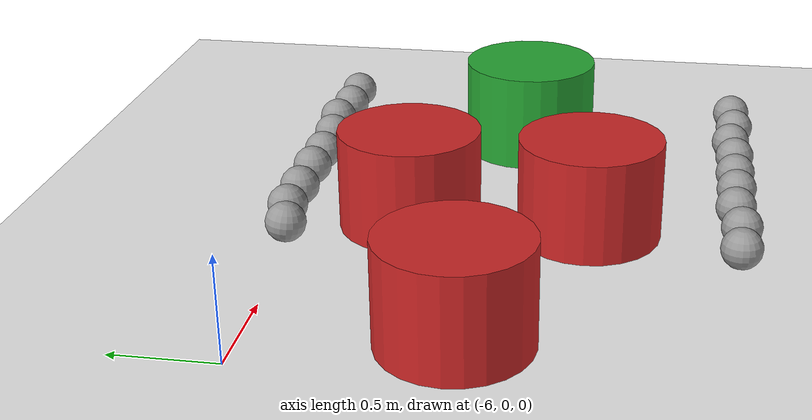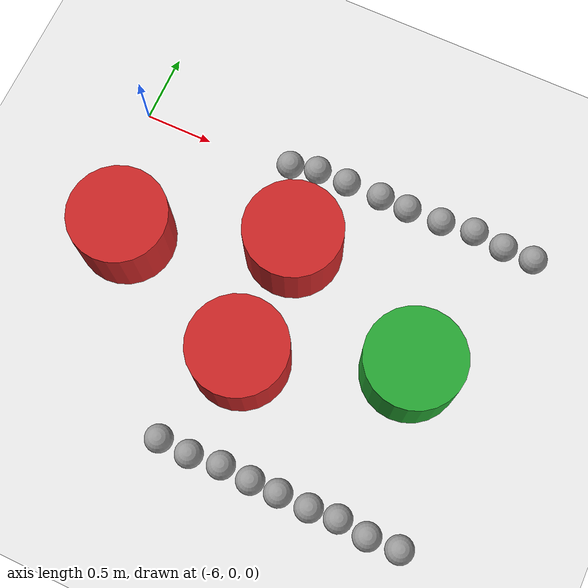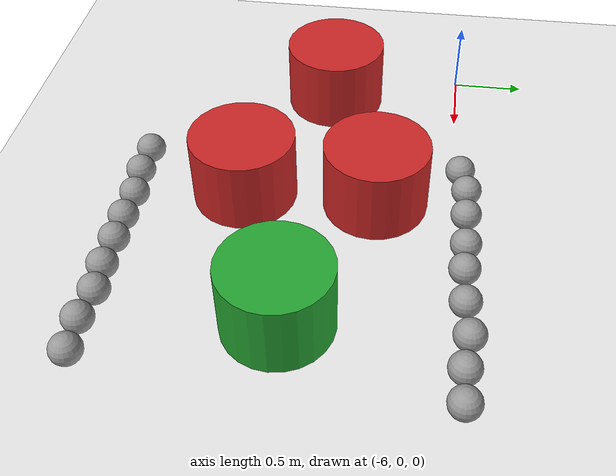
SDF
<sdf version="1.7">
 <world name="default">
  <model name="ground_plane">
   <static>1</static>
   <link name="link">
    <collision name="collision">
     <geometry><plane><normal>0 0 1</normal><size>100 100</size></plane></geometry>
     <surface>
      <contact><collide_bitmask>65535</collide_bitmask></contact>
      <friction><ode><mu>100</mu><mu2>50</mu2></ode></friction>
     </surface>
    </collision>
    <visual name="visual">
     <cast_shadows>0</cast_shadows>
     <geometry><plane><normal>0 0 1</normal><size>100 100</size></plane></geometry>
     <material>
      <script><uri>file://media/materials/scripts/gazebo.material</uri><name>Gazebo/White</name></script>
     </material>
    </visual>
   </link>
  </model>
  <model name="model8.1_0">
   <link name="link_1">
    <inertial>
     <mass>1</mass>
     <inertia><ixx>0.145833</ixx><ixy>0</ixy><ixz>0</ixz><iyy>0.145833</iyy><iyz>0</iyz><izz>0.125</izz></inertia>
    </inertial>
    <visual name="visual">
     <geometry><cylinder><radius>0.35</radius><length>0.5</length></cylinder></geometry>
     <material>
      <lighting>1</lighting>
      <script><uri>file://media/materials/scripts/gazebo.material</uri><name>Gazebo/Green</name></script>
      <shader type="pixel"><normal_map>__default__</normal_map></shader>
      <ambient>0.3 0.3 0.3 1</ambient>
      <diffuse>0.7 0.7 0.7 1</diffuse>
      <specular>0.01 0.01 0.01 1</specular>
      <emissive>0 0 0 1</emissive>
     </material>
    </visual>
    <collision name="collision">
     <geometry><cylinder><radius>0.35</radius><length>0.5</length></cylinder></geometry>
     <surface>
      <friction>
       <ode><mu>1</mu><mu2>1</mu2><fdir1>0 0 0</fdir1><slip1>0</slip1><slip2>0</slip2></ode>
       <torsional>
        <coefficient>1</coefficient>
        <patch_radius>0</patch_radius>
        <surface_radius>0</surface_radius>
        <use_patch_radius>1</use_patch_radius>
        <ode><slip>0</slip></ode>
       </torsional>
      </friction>
      <bounce><restitution_coefficient>0</restitution_coefficient><threshold>1e+06</threshold></bounce>
      <contact>
       <collide_without_contact>0</collide_without_contact>
       <collide_without_contact_bitmask>1</collide_without_contact_bitmask>
       <collide_bitmask>1</collide_bitmask>
       <ode>
        <soft_cfm>0</soft_cfm>
        <soft_erp>0.2</soft_erp>
        <kp>1e+13</kp>
        <kd>1</kd>
        <max_vel>0.01</max_vel>
        <min_depth>0</min_depth>
       </ode>
       <bullet>
        <split_impulse>1</split_impulse>
        <split_impulse_penetration_threshold>-0.01</split_impulse_penetration_threshold>
        <soft_cfm>0</soft_cfm>
        <soft_erp>0.2</soft_erp>
        <kp>1e+13</kp>
        <kd>1</kd>
       </bullet>
      </contact>
     </surface>
    </collision>
   </link>
   <static>0</static>
   <pose>-3.48428 -0.984785 0.249997 -5e-06 5e-06 8.1e-05</pose>
  </model>
  <model name="model8.1_1">
   <link name="link_1">
    <inertial>
     <mass>1</mass>
     <inertia><ixx>0.145833</ixx><ixy>0</ixy><ixz>0</ixz><iyy>0.145833</iyy><iyz>0</iyz><izz>0.125</izz></inertia>
    </inertial>
    <visual name="visual">
     <geometry><cylinder><radius>0.35</radius><length>0.5</length></cylinder></geometry>
     <material>
      <lighting>1</lighting>
      <script><uri>file://media/materials/scripts/gazebo.material</uri><name>Gazebo/Red</name></script>
      <shader type="pixel"><normal_map>__default__</normal_map></shader>
      <ambient>0.3 0.3 0.3 1</ambient>
      <diffuse>0.7 0.7 0.7 1</diffuse>
      <specular>0.01 0.01 0.01 1</specular>
      <emissive>0 0 0 1</emissive>
     </material>
    </visual>
    <collision name="collision">
     <geometry><cylinder><radius>0.35</radius><length>0.5</length></cylinder></geometry>
     <surface>
      <friction>
       <ode><mu>1</mu><mu2>1</mu2><fdir1>0 0 0</fdir1><slip1>0</slip1><slip2>0</slip2></ode>
       <torsional>
        <coefficient>1</coefficient>
        <patch_radius>0</patch_radius>
        <surface_radius>0</surface_radius>
        <use_patch_radius>1</use_patch_radius>
        <ode><slip>0</slip></ode>
       </torsional>
      </friction>
      <bounce><restitution_coefficient>0</restitution_coefficient><threshold>1e+06</threshold></bounce>
      <contact>
       <collide_without_contact>0</collide_without_contact>
       <collide_without_contact_bitmask>1</collide_without_contact_bitmask>
       <collide_bitmask>1</collide_bitmask>
       <ode>
        <soft_cfm>0</soft_cfm>
        <soft_erp>0.2</soft_erp>
        <kp>1e+13</kp>
        <kd>1</kd>
        <max_vel>0.01</max_vel>
        <min_depth>0</min_depth>
       </ode>
       <bullet>
        <split_impulse>1</split_impulse>
        <split_impulse_penetration_threshold>-0.01</split_impulse_penetration_threshold>
        <soft_cfm>0</soft_cfm>
        <soft_erp>0.2</soft_erp>
        <kp>1e+13</kp>
        <kd>1</kd>
       </bullet>
      </contact>
     </surface>
    </collision>
   </link>
   <static>0</static>
   <pose>-5.69949 -0.911997 0.249993 -5e-06 -5e-06 0</pose>
  </model>
  <model name="model8.2_0">
   <link name="link_1">
    <inertial>
     <mass>1</mass>
     <inertia><ixx>0.145833</ixx><ixy>0</ixy><ixz>0</ixz><iyy>0.145833</iyy><iyz>0</iyz><izz>0.125</izz></inertia>
    </inertial>
    <visual name="visual">
     <geometry><cylinder><radius>0.35</radius><length>0.5</length></cylinder></geometry>
     <material>
      <lighting>1</lighting>
      <script><uri>file://media/materials/scripts/gazebo.material</uri><name>Gazebo/Red</name></script>
      <shader type="pixel"><normal_map>__default__</normal_map></shader>
      <ambient>0 1 0 1</ambient>
      <diffuse>0.7 0.7 0.7 1</diffuse>
      <specular>0.01 0.01 0.01 1</specular>
      <emissive>0 0 0 1</emissive>
     </material>
    </visual>
    <collision name="collision">
     <geometry><cylinder><radius>0.35</radius><length>0.5</length></cylinder></geometry>
     <surface>
      <friction>
       <ode><mu>1</mu><mu2>1</mu2><fdir1>0 0 0</fdir1><slip1>0</slip1><slip2>0</slip2></ode>
       <torsional>
        <coefficient>1</coefficient>
        <patch_radius>0</patch_radius>
        <surface_radius>0</surface_radius>
        <use_patch_radius>1</use_patch_radius>
        <ode><slip>0</slip></ode>
       </torsional>
      </friction>
      <bounce><restitution_coefficient>0</restitution_coefficient><threshold>1e+06</threshold></bounce>
      <contact>
       <collide_without_contact>0</collide_without_contact>
       <collide_without_contact_bitmask>1</collide_without_contact_bitmask>
       <collide_bitmask>1</collide_bitmask>
       <ode>
        <soft_cfm>0</soft_cfm>
        <soft_erp>0.2</soft_erp>
        <kp>1e+13</kp>
        <kd>1</kd>
        <max_vel>0.01</max_vel>
        <min_depth>0</min_depth>
       </ode>
       <bullet>
        <split_impulse>1</split_impulse>
        <split_impulse_penetration_threshold>-0.01</split_impulse_penetration_threshold>
        <soft_cfm>0</soft_cfm>
        <soft_erp>0.2</soft_erp>
        <kp>1e+13</kp>
        <kd>1</kd>
       </bullet>
      </contact>
     </surface>
    </collision>
   </link>
   <static>0</static>
   <pose>-4.57136 -1.39215 0.249993 -5e-06 -5e-06 0</pose>
  </model>
  <model name="model8.2_1">
   <link name="link_1">
    <inertial>
     <mass>1</mass>
     <inertia><ixx>0.145833</ixx><ixy>0</ixy><ixz>0</ixz><iyy>0.145833</iyy><iyz>0</iyz><izz>0.125</izz></inertia>
    </inertial>
    <visual name="visual">
     <geometry><cylinder><radius>0.35</radius><length>0.5</length></cylinder></geometry>
     <material>
      <lighting>1</lighting>
      <script><uri>file://media/materials/scripts/gazebo.material</uri><name>Gazebo/Red</name></script>
      <shader type="pixel"><normal_map>__default__</normal_map></shader>
      <ambient>0 1 0 1</ambient>
      <diffuse>0.7 0.7 0.7 1</diffuse>
      <specular>0.01 0.01 0.01 1</specular>
      <emissive>0 0 0 1</emissive>
     </material>
    </visual>
    <collision name="collision">
     <geometry><cylinder><radius>0.35</radius><length>0.5</length></cylinder></geometry>
     <surface>
      <friction>
       <ode><mu>1</mu><mu2>1</mu2><fdir1>0 0 0</fdir1><slip1>0</slip1><slip2>0</slip2></ode>
       <torsional>
        <coefficient>1</coefficient>
        <patch_radius>0</patch_radius>
        <surface_radius>0</surface_radius>
        <use_patch_radius>1</use_patch_radius>
        <ode><slip>0</slip></ode>
       </torsional>
      </friction>
      <bounce><restitution_coefficient>0</restitution_coefficient><threshold>1e+06</threshold></bounce>
      <contact>
       <collide_without_contact>0</collide_without_contact>
       <collide_without_contact_bitmask>1</collide_without_contact_bitmask>
       <collide_bitmask>1</collide_bitmask>
       <ode>
        <soft_cfm>0</soft_cfm>
        <soft_erp>0.2</soft_erp>
        <kp>1e+13</kp>
        <kd>1</kd>
        <max_vel>0.01</max_vel>
        <min_depth>0</min_depth>
       </ode>
       <bullet>
        <split_impulse>1</split_impulse>
        <split_impulse_penetration_threshold>-0.01</split_impulse_penetration_threshold>
        <soft_cfm>0</soft_cfm>
        <soft_erp>0.2</soft_erp>
        <kp>1e+13</kp>
        <kd>1</kd>
       </bullet>
      </contact>
     </surface>
    </collision>
   </link>
   <static>0</static>
   <pose>-4.57857 -0.510922 0.249991 0 -0 0</pose>
  </model>
  <model name="sphere_24">
   <link name="link_0">
    <inertial>
     <mass>1</mass>
     <inertia><ixx>0.1</ixx><ixy>0</ixy><ixz>0</ixz><iyy>0.1</iyy><iyz>0</iyz><izz>0.1</izz></inertia>
    </inertial>
    <visual name="visual">
     <geometry><sphere><radius>0.1</radius></sphere></geometry>
     <material>
      <lighting>1</lighting>
      <script><uri>file://media/materials/scripts/gazebo.material</uri><name>Gazebo/Grey</name></script>
      <shader type="pixel"><normal_map>__default__</normal_map></shader>
      <ambient>0.3 0.3 0.3 1</ambient>
      <diffuse>0.7 0.7 0.7 1</diffuse>
      <specular>0.01 0.01 0.01 1</specular>
      <emissive>0 0 0 1</emissive>
     </material>
    </visual>
    <collision name="collision">
     <geometry><sphere><radius>0.1</radius></sphere></geometry>
     <surface>
      <friction>
       <ode><mu>1</mu><mu2>1</mu2><fdir1>0 0 0</fdir1><slip1>0</slip1><slip2>0</slip2></ode>
       <torsional>
        <coefficient>1</coefficient>
        <patch_radius>0</patch_radius>
        <surface_radius>0</surface_radius>
        <use_patch_radius>1</use_patch_radius>
        <ode><slip>0</slip></ode>
       </torsional>
      </friction>
      <bounce><restitution_coefficient>0</restitution_coefficient><threshold>1e+06</threshold></bounce>
      <contact>
       <collide_without_contact>0</collide_without_contact>
       <collide_without_contact_bitmask>1</collide_without_contact_bitmask>
       <collide_bitmask>1</collide_bitmask>
       <ode>
        <soft_cfm>0</soft_cfm>
        <soft_erp>0.2</soft_erp>
        <kp>1e+13</kp>
        <kd>1</kd>
        <max_vel>0.01</max_vel>
        <min_depth>0</min_depth>
       </ode>
       <bullet>
        <split_impulse>1</split_impulse>
        <split_impulse_penetration_threshold>-0.01</split_impulse_penetration_threshold>
        <soft_cfm>0</soft_cfm>
        <soft_erp>0.2</soft_erp>
        <kp>1e+13</kp>
        <kd>1</kd>
       </bullet>
      </contact>
     </surface>
    </collision>
   </link>
   <static>0</static>
   <pose>-3.08021 -2.11051 0.1 0 -0 0</pose>
  </model>
  <model name="sphere_25">
   <link name="link_0">
    <inertial>
     <mass>1</mass>
     <inertia><ixx>0.1</ixx><ixy>0</ixy><ixz>0</ixz><iyy>0.1</iyy><iyz>0</iyz><izz>0.1</izz></inertia>
    </inertial>
    <visual name="visual">
     <geometry><sphere><radius>0.1</radius></sphere></geometry>
     <material>
      <lighting>1</lighting>
      <script><uri>file://media/materials/scripts/gazebo.material</uri><name>Gazebo/Grey</name></script>
      <shader type="pixel"><normal_map>__default__</normal_map></shader>
      <ambient>0.3 0.3 0.3 1</ambient>
      <diffuse>0.7 0.7 0.7 1</diffuse>
      <specular>0.01 0.01 0.01 1</specular>
      <emissive>0 0 0 1</emissive>
     </material>
    </visual>
    <collision name="collision">
     <geometry><sphere><radius>0.1</radius></sphere></geometry>
     <surface>
      <friction>
       <ode><mu>1</mu><mu2>1</mu2><fdir1>0 0 0</fdir1><slip1>0</slip1><slip2>0</slip2></ode>
       <torsional>
        <coefficient>1</coefficient>
        <patch_radius>0</patch_radius>
        <surface_radius>0</surface_radius>
        <use_patch_radius>1</use_patch_radius>
        <ode><slip>0</slip></ode>
       </torsional>
      </friction>
      <bounce><restitution_coefficient>0</restitution_coefficient><threshold>1e+06</threshold></bounce>
      <contact>
       <collide_without_contact>0</collide_without_contact>
       <collide_without_contact_bitmask>1</collide_without_contact_bitmask>
       <collide_bitmask>1</collide_bitmask>
       <ode>
        <soft_cfm>0</soft_cfm>
        <soft_erp>0.2</soft_erp>
        <kp>1e+13</kp>
        <kd>1</kd>
        <max_vel>0.01</max_vel>
        <min_depth>0</min_depth>
       </ode>
       <bullet>
        <split_impulse>1</split_impulse>
        <split_impulse_penetration_threshold>-0.01</split_impulse_penetration_threshold>
        <soft_cfm>0</soft_cfm>
        <soft_erp>0.2</soft_erp>
        <kp>1e+13</kp>
        <kd>1</kd>
       </bullet>
      </contact>
     </surface>
    </collision>
   </link>
   <static>0</static>
   <pose>-3.30687 -2.12164 0.1 0 -0 0</pose>
  </model>
  <model name="sphere_26">
   <link name="link_0">
    <inertial>
     <mass>1</mass>
     <inertia><ixx>0.1</ixx><ixy>0</ixy><ixz>0</ixz><iyy>0.1</iyy><iyz>0</iyz><izz>0.1</izz></inertia>
    </inertial>
    <visual name="visual">
     <geometry><sphere><radius>0.1</radius></sphere></geometry>
     <material>
      <lighting>1</lighting>
      <script><uri>file://media/materials/scripts/gazebo.material</uri><name>Gazebo/Grey</name></script>
      <shader type="pixel"><normal_map>__default__</normal_map></shader>
      <ambient>0.3 0.3 0.3 1</ambient>
      <diffuse>0.7 0.7 0.7 1</diffuse>
      <specular>0.01 0.01 0.01 1</specular>
      <emissive>0 0 0 1</emissive>
     </material>
    </visual>
    <collision name="collision">
     <geometry><sphere><radius>0.1</radius></sphere></geometry>
     <surface>
      <friction>
       <ode><mu>1</mu><mu2>1</mu2><fdir1>0 0 0</fdir1><slip1>0</slip1><slip2>0</slip2></ode>
       <torsional>
        <coefficient>1</coefficient>
        <patch_radius>0</patch_radius>
        <surface_radius>0</surface_radius>
        <use_patch_radius>1</use_patch_radius>
        <ode><slip>0</slip></ode>
       </torsional>
      </friction>
      <bounce><restitution_coefficient>0</restitution_coefficient><threshold>1e+06</threshold></bounce>
      <contact>
       <collide_without_contact>0</collide_without_contact>
       <collide_without_contact_bitmask>1</collide_without_contact_bitmask>
       <collide_bitmask>1</collide_bitmask>
       <ode>
        <soft_cfm>0</soft_cfm>
        <soft_erp>0.2</soft_erp>
        <kp>1e+13</kp>
        <kd>1</kd>
        <max_vel>0.01</max_vel>
        <min_depth>0</min_depth>
       </ode>
       <bullet>
        <split_impulse>1</split_impulse>
        <split_impulse_penetration_threshold>-0.01</split_impulse_penetration_threshold>
        <soft_cfm>0</soft_cfm>
        <soft_erp>0.2</soft_erp>
        <kp>1e+13</kp>
        <kd>1</kd>
       </bullet>
      </contact>
     </surface>
    </collision>
   </link>
   <static>0</static>
   <pose>-3.52507 -2.09686 0.1 -0.002746 0.025029 -0.000888</pose>
  </model>
  <model name="sphere_27">
   <link name="link_0">
    <inertial>
     <mass>1</mass>
     <inertia><ixx>0.1</ixx><ixy>0</ixy><ixz>0</ixz><iyy>0.1</iyy><iyz>0</iyz><izz>0.1</izz></inertia>
    </inertial>
    <visual name="visual">
     <geometry><sphere><radius>0.1</radius></sphere></geometry>
     <material>
      <lighting>1</lighting>
      <script><uri>file://media/materials/scripts/gazebo.material</uri><name>Gazebo/Grey</name></script>
      <shader type="pixel"><normal_map>__default__</normal_map></shader>
      <ambient>0.3 0.3 0.3 1</ambient>
      <diffuse>0.7 0.7 0.7 1</diffuse>
      <specular>0.01 0.01 0.01 1</specular>
      <emissive>0 0 0 1</emissive>
     </material>
    </visual>
    <collision name="collision">
     <geometry><sphere><radius>0.1</radius></sphere></geometry>
     <surface>
      <friction>
       <ode><mu>1</mu><mu2>1</mu2><fdir1>0 0 0</fdir1><slip1>0</slip1><slip2>0</slip2></ode>
       <torsional>
        <coefficient>1</coefficient>
        <patch_radius>0</patch_radius>
        <surface_radius>0</surface_radius>
        <use_patch_radius>1</use_patch_radius>
        <ode><slip>0</slip></ode>
       </torsional>
      </friction>
      <bounce><restitution_coefficient>0</restitution_coefficient><threshold>1e+06</threshold></bounce>
      <contact>
       <collide_without_contact>0</collide_without_contact>
       <collide_without_contact_bitmask>1</collide_without_contact_bitmask>
       <collide_bitmask>1</collide_bitmask>
       <ode>
        <soft_cfm>0</soft_cfm>
        <soft_erp>0.2</soft_erp>
        <kp>1e+13</kp>
        <kd>1</kd>
        <max_vel>0.01</max_vel>
        <min_depth>0</min_depth>
       </ode>
       <bullet>
        <split_impulse>1</split_impulse>
        <split_impulse_penetration_threshold>-0.01</split_impulse_penetration_threshold>
        <soft_cfm>0</soft_cfm>
        <soft_erp>0.2</soft_erp>
        <kp>1e+13</kp>
        <kd>1</kd>
       </bullet>
      </contact>
     </surface>
    </collision>
   </link>
   <static>0</static>
   <pose>-3.72917 -2.11295 0.1 0.002869 -0.02662 -0.000892</pose>
  </model>
  <model name="sphere_28">
   <link name="link_0">
    <inertial>
     <mass>1</mass>
     <inertia><ixx>0.1</ixx><ixy>0</ixy><ixz>0</ixz><iyy>0.1</iyy><iyz>0</iyz><izz>0.1</izz></inertia>
    </inertial>
    <visual name="visual">
     <geometry><sphere><radius>0.1</radius></sphere></geometry>
     <material>
      <lighting>1</lighting>
      <script><uri>file://media/materials/scripts/gazebo.material</uri><name>Gazebo/Grey</name></script>
      <shader type="pixel"><normal_map>__default__</normal_map></shader>
      <ambient>0.3 0.3 0.3 1</ambient>
      <diffuse>0.7 0.7 0.7 1</diffuse>
      <specular>0.01 0.01 0.01 1</specular>
      <emissive>0 0 0 1</emissive>
     </material>
    </visual>
    <collision name="collision">
     <geometry><sphere><radius>0.1</radius></sphere></geometry>
     <surface>
      <friction>
       <ode><mu>1</mu><mu2>1</mu2><fdir1>0 0 0</fdir1><slip1>0</slip1><slip2>0</slip2></ode>
       <torsional>
        <coefficient>1</coefficient>
        <patch_radius>0</patch_radius>
        <surface_radius>0</surface_radius>
        <use_patch_radius>1</use_patch_radius>
        <ode><slip>0</slip></ode>
       </torsional>
      </friction>
      <bounce><restitution_coefficient>0</restitution_coefficient><threshold>1e+06</threshold></bounce>
      <contact>
       <collide_without_contact>0</collide_without_contact>
       <collide_without_contact_bitmask>1</collide_without_contact_bitmask>
       <collide_bitmask>1</collide_bitmask>
       <ode>
        <soft_cfm>0</soft_cfm>
        <soft_erp>0.2</soft_erp>
        <kp>1e+13</kp>
        <kd>1</kd>
        <max_vel>0.01</max_vel>
        <min_depth>0</min_depth>
       </ode>
       <bullet>
        <split_impulse>1</split_impulse>
        <split_impulse_penetration_threshold>-0.01</split_impulse_penetration_threshold>
        <soft_cfm>0</soft_cfm>
        <soft_erp>0.2</soft_erp>
        <kp>1e+13</kp>
        <kd>1</kd>
       </bullet>
      </contact>
     </surface>
    </collision>
   </link>
   <static>0</static>
   <pose>-3.95319 -2.10993 0.1 0 -0 0</pose>
  </model>
  <model name="sphere_29">
   <link name="link_0">
    <inertial>
     <mass>1</mass>
     <inertia><ixx>0.1</ixx><ixy>0</ixy><ixz>0</ixz><iyy>0.1</iyy><iyz>0</iyz><izz>0.1</izz></inertia>
    </inertial>
    <visual name="visual">
     <geometry><sphere><radius>0.1</radius></sphere></geometry>
     <material>
      <lighting>1</lighting>
      <script><uri>file://media/materials/scripts/gazebo.material</uri><name>Gazebo/Grey</name></script>
      <shader type="pixel"><normal_map>__default__</normal_map></shader>
      <ambient>0.3 0.3 0.3 1</ambient>
      <diffuse>0.7 0.7 0.7 1</diffuse>
      <specular>0.01 0.01 0.01 1</specular>
      <emissive>0 0 0 1</emissive>
     </material>
    </visual>
    <collision name="collision">
     <geometry><sphere><radius>0.1</radius></sphere></geometry>
     <surface>
      <friction>
       <ode><mu>1</mu><mu2>1</mu2><fdir1>0 0 0</fdir1><slip1>0</slip1><slip2>0</slip2></ode>
       <torsional>
        <coefficient>1</coefficient>
        <patch_radius>0</patch_radius>
        <surface_radius>0</surface_radius>
        <use_patch_radius>1</use_patch_radius>
        <ode><slip>0</slip></ode>
       </torsional>
      </friction>
      <bounce><restitution_coefficient>0</restitution_coefficient><threshold>1e+06</threshold></bounce>
      <contact>
       <collide_without_contact>0</collide_without_contact>
       <collide_without_contact_bitmask>1</collide_without_contact_bitmask>
       <collide_bitmask>1</collide_bitmask>
       <ode>
        <soft_cfm>0</soft_cfm>
        <soft_erp>0.2</soft_erp>
        <kp>1e+13</kp>
        <kd>1</kd>
        <max_vel>0.01</max_vel>
        <min_depth>0</min_depth>
       </ode>
       <bullet>
        <split_impulse>1</split_impulse>
        <split_impulse_penetration_threshold>-0.01</split_impulse_penetration_threshold>
        <soft_cfm>0</soft_cfm>
        <soft_erp>0.2</soft_erp>
        <kp>1e+13</kp>
        <kd>1</kd>
       </bullet>
      </contact>
     </surface>
    </collision>
   </link>
   <static>0</static>
   <pose>-4.15674 -2.11162 0.1 0 -0 0</pose>
  </model>
  <model name="sphere_30">
   <link name="link_0">
    <inertial>
     <mass>1</mass>
     <inertia><ixx>0.1</ixx><ixy>0</ixy><ixz>0</ixz><iyy>0.1</iyy><iyz>0</iyz><izz>0.1</izz></inertia>
    </inertial>
    <visual name="visual">
     <geometry><sphere><radius>0.1</radius></sphere></geometry>
     <material>
      <lighting>1</lighting>
      <script><uri>file://media/materials/scripts/gazebo.material</uri><name>Gazebo/Grey</name></script>
      <shader type="pixel"><normal_map>__default__</normal_map></shader>
      <ambient>0.3 0.3 0.3 1</ambient>
      <diffuse>0.7 0.7 0.7 1</diffuse>
      <specular>0.01 0.01 0.01 1</specular>
      <emissive>0 0 0 1</emissive>
     </material>
    </visual>
    <collision name="collision">
     <geometry><sphere><radius>0.1</radius></sphere></geometry>
     <surface>
      <friction>
       <ode><mu>1</mu><mu2>1</mu2><fdir1>0 0 0</fdir1><slip1>0</slip1><slip2>0</slip2></ode>
       <torsional>
        <coefficient>1</coefficient>
        <patch_radius>0</patch_radius>
        <surface_radius>0</surface_radius>
        <use_patch_radius>1</use_patch_radius>
        <ode><slip>0</slip></ode>
       </torsional>
      </friction>
      <bounce><restitution_coefficient>0</restitution_coefficient><threshold>1e+06</threshold></bounce>
      <contact>
       <collide_without_contact>0</collide_without_contact>
       <collide_without_contact_bitmask>1</collide_without_contact_bitmask>
       <collide_bitmask>1</collide_bitmask>
       <ode>
        <soft_cfm>0</soft_cfm>
        <soft_erp>0.2</soft_erp>
        <kp>1e+13</kp>
        <kd>1</kd>
        <max_vel>0.01</max_vel>
        <min_depth>0</min_depth>
       </ode>
       <bullet>
        <split_impulse>1</split_impulse>
        <split_impulse_penetration_threshold>-0.01</split_impulse_penetration_threshold>
        <soft_cfm>0</soft_cfm>
        <soft_erp>0.2</soft_erp>
        <kp>1e+13</kp>
        <kd>1</kd>
       </bullet>
      </contact>
     </surface>
    </collision>
   </link>
   <static>0</static>
   <pose>-4.37641 -2.1025 0.1 0 -0 0</pose>
  </model>
  <model name="sphere_31">
   <link name="link_0">
    <inertial>
     <mass>1</mass>
     <inertia><ixx>0.1</ixx><ixy>0</ixy><ixz>0</ixz><iyy>0.1</iyy><iyz>0</iyz><izz>0.1</izz></inertia>
    </inertial>
    <visual name="visual">
     <geometry><sphere><radius>0.1</radius></sphere></geometry>
     <material>
      <lighting>1</lighting>
      <script><uri>file://media/materials/scripts/gazebo.material</uri><name>Gazebo/Grey</name></script>
      <shader type="pixel"><normal_map>__default__</normal_map></shader>
      <ambient>0.3 0.3 0.3 1</ambient>
      <diffuse>0.7 0.7 0.7 1</diffuse>
      <specular>0.01 0.01 0.01 1</specular>
      <emissive>0 0 0 1</emissive>
     </material>
    </visual>
    <collision name="collision">
     <geometry><sphere><radius>0.1</radius></sphere></geometry>
     <surface>
      <friction>
       <ode><mu>1</mu><mu2>1</mu2><fdir1>0 0 0</fdir1><slip1>0</slip1><slip2>0</slip2></ode>
       <torsional>
        <coefficient>1</coefficient>
        <patch_radius>0</patch_radius>
        <surface_radius>0</surface_radius>
        <use_patch_radius>1</use_patch_radius>
        <ode><slip>0</slip></ode>
       </torsional>
      </friction>
      <bounce><restitution_coefficient>0</restitution_coefficient><threshold>1e+06</threshold></bounce>
      <contact>
       <collide_without_contact>0</collide_without_contact>
       <collide_without_contact_bitmask>1</collide_without_contact_bitmask>
       <collide_bitmask>1</collide_bitmask>
       <ode>
        <soft_cfm>0</soft_cfm>
        <soft_erp>0.2</soft_erp>
        <kp>1e+13</kp>
        <kd>1</kd>
        <max_vel>0.01</max_vel>
        <min_depth>0</min_depth>
       </ode>
       <bullet>
        <split_impulse>1</split_impulse>
        <split_impulse_penetration_threshold>-0.01</split_impulse_penetration_threshold>
        <soft_cfm>0</soft_cfm>
        <soft_erp>0.2</soft_erp>
        <kp>1e+13</kp>
        <kd>1</kd>
       </bullet>
      </contact>
     </surface>
    </collision>
   </link>
   <static>0</static>
   <pose>-4.60455 -2.12423 0.1 0 -0 0</pose>
  </model>
  <model name="sphere_32">
   <link name="link_0">
    <inertial>
     <mass>1</mass>
     <inertia><ixx>0.1</ixx><ixy>0</ixy><ixz>0</ixz><iyy>0.1</iyy><iyz>0</iyz><izz>0.1</izz></inertia>
    </inertial>
    <visual name="visual">
     <geometry><sphere><radius>0.1</radius></sphere></geometry>
     <material>
      <lighting>1</lighting>
      <script><uri>file://media/materials/scripts/gazebo.material</uri><name>Gazebo/Grey</name></script>
      <shader type="pixel"><normal_map>__default__</normal_map></shader>
      <ambient>0.3 0.3 0.3 1</ambient>
      <diffuse>0.7 0.7 0.7 1</diffuse>
      <specular>0.01 0.01 0.01 1</specular>
      <emissive>0 0 0 1</emissive>
     </material>
    </visual>
    <collision name="collision">
     <geometry><sphere><radius>0.1</radius></sphere></geometry>
     <surface>
      <friction>
       <ode><mu>1</mu><mu2>1</mu2><fdir1>0 0 0</fdir1><slip1>0</slip1><slip2>0</slip2></ode>
       <torsional>
        <coefficient>1</coefficient>
        <patch_radius>0</patch_radius>
        <surface_radius>0</surface_radius>
        <use_patch_radius>1</use_patch_radius>
        <ode><slip>0</slip></ode>
       </torsional>
      </friction>
      <bounce><restitution_coefficient>0</restitution_coefficient><threshold>1e+06</threshold></bounce>
      <contact>
       <collide_without_contact>0</collide_without_contact>
       <collide_without_contact_bitmask>1</collide_without_contact_bitmask>
       <collide_bitmask>1</collide_bitmask>
       <ode>
        <soft_cfm>0</soft_cfm>
        <soft_erp>0.2</soft_erp>
        <kp>1e+13</kp>
        <kd>1</kd>
        <max_vel>0.01</max_vel>
        <min_depth>0</min_depth>
       </ode>
       <bullet>
        <split_impulse>1</split_impulse>
        <split_impulse_penetration_threshold>-0.01</split_impulse_penetration_threshold>
        <soft_cfm>0</soft_cfm>
        <soft_erp>0.2</soft_erp>
        <kp>1e+13</kp>
        <kd>1</kd>
       </bullet>
      </contact>
     </surface>
    </collision>
   </link>
   <static>0</static>
   <pose>-4.83291 -2.1162 0.1 0 -0 0</pose>
  </model>
  <model name="sphere_94">
   <link name="link_0">
    <inertial>
     <mass>1</mass>
     <inertia><ixx>0.1</ixx><ixy>0</ixy><ixz>0</ixz><iyy>0.1</iyy><iyz>0</iyz><izz>0.1</izz></inertia>
    </inertial>
    <visual name="visual">
     <geometry><sphere><radius>0.1</radius></sphere></geometry>
     <material>
      <lighting>1</lighting>
      <script><uri>file://media/materials/scripts/gazebo.material</uri><name>Gazebo/Grey</name></script>
      <shader type="pixel"><normal_map>__default__</normal_map></shader>
      <ambient>0.3 0.3 0.3 1</ambient>
      <diffuse>0.7 0.7 0.7 1</diffuse>
      <specular>0.01 0.01 0.01 1</specular>
      <emissive>0 0 0 1</emissive>
     </material>
    </visual>
    <collision name="collision">
     <geometry><sphere><radius>0.1</radius></sphere></geometry>
     <surface>
      <friction>
       <ode><mu>1</mu><mu2>1</mu2><fdir1>0 0 0</fdir1><slip1>0</slip1><slip2>0</slip2></ode>
       <torsional>
        <coefficient>1</coefficient>
        <patch_radius>0</patch_radius>
        <surface_radius>0</surface_radius>
        <use_patch_radius>1</use_patch_radius>
        <ode><slip>0</slip></ode>
       </torsional>
      </friction>
      <bounce><restitution_coefficient>0</restitution_coefficient><threshold>1e+06</threshold></bounce>
      <contact>
       <collide_without_contact>0</collide_without_contact>
       <collide_without_contact_bitmask>1</collide_without_contact_bitmask>
       <collide_bitmask>1</collide_bitmask>
       <ode>
        <soft_cfm>0</soft_cfm>
        <soft_erp>0.2</soft_erp>
        <kp>1e+13</kp>
        <kd>1</kd>
        <max_vel>0.01</max_vel>
        <min_depth>0</min_depth>
       </ode>
       <bullet>
        <split_impulse>1</split_impulse>
        <split_impulse_penetration_threshold>-0.01</split_impulse_penetration_threshold>
        <soft_cfm>0</soft_cfm>
        <soft_erp>0.2</soft_erp>
        <kp>1e+13</kp>
        <kd>1</kd>
       </bullet>
      </contact>
     </surface>
    </collision>
   </link>
   <static>0</static>
   <pose>-3.00652 0.102714 0.1 0 -0 0</pose>
  </model>
  <model name="sphere_95">
   <link name="link_0">
    <inertial>
     <mass>1</mass>
     <inertia><ixx>0.1</ixx><ixy>0</ixy><ixz>0</ixz><iyy>0.1</iyy><iyz>0</iyz><izz>0.1</izz></inertia>
    </inertial>
    <visual name="visual">
     <geometry><sphere><radius>0.1</radius></sphere></geometry>
     <material>
      <lighting>1</lighting>
      <script><uri>file://media/materials/scripts/gazebo.material</uri><name>Gazebo/Grey</name></script>
      <shader type="pixel"><normal_map>__default__</normal_map></shader>
      <ambient>0.3 0.3 0.3 1</ambient>
      <diffuse>0.7 0.7 0.7 1</diffuse>
      <specular>0.01 0.01 0.01 1</specular>
      <emissive>0 0 0 1</emissive>
     </material>
    </visual>
    <collision name="collision">
     <geometry><sphere><radius>0.1</radius></sphere></geometry>
     <surface>
      <friction>
       <ode><mu>1</mu><mu2>1</mu2><fdir1>0 0 0</fdir1><slip1>0</slip1><slip2>0</slip2></ode>
       <torsional>
        <coefficient>1</coefficient>
        <patch_radius>0</patch_radius>
        <surface_radius>0</surface_radius>
        <use_patch_radius>1</use_patch_radius>
        <ode><slip>0</slip></ode>
       </torsional>
      </friction>
      <bounce><restitution_coefficient>0</restitution_coefficient><threshold>1e+06</threshold></bounce>
      <contact>
       <collide_without_contact>0</collide_without_contact>
       <collide_without_contact_bitmask>1</collide_without_contact_bitmask>
       <collide_bitmask>1</collide_bitmask>
       <ode>
        <soft_cfm>0</soft_cfm>
        <soft_erp>0.2</soft_erp>
        <kp>1e+13</kp>
        <kd>1</kd>
        <max_vel>0.01</max_vel>
        <min_depth>0</min_depth>
       </ode>
       <bullet>
        <split_impulse>1</split_impulse>
        <split_impulse_penetration_threshold>-0.01</split_impulse_penetration_threshold>
        <soft_cfm>0</soft_cfm>
        <soft_erp>0.2</soft_erp>
        <kp>1e+13</kp>
        <kd>1</kd>
       </bullet>
      </contact>
     </surface>
    </collision>
   </link>
   <static>0</static>
   <pose>-3.23039 0.100863 0.1 0 -0 0</pose>
  </model>
  <model name="sphere_96">
   <link name="link_0">
    <inertial>
     <mass>1</mass>
     <inertia><ixx>0.1</ixx><ixy>0</ixy><ixz>0</ixz><iyy>0.1</iyy><iyz>0</iyz><izz>0.1</izz></inertia>
    </inertial>
    <visual name="visual">
     <geometry><sphere><radius>0.1</radius></sphere></geometry>
     <material>
      <lighting>1</lighting>
      <script><uri>file://media/materials/scripts/gazebo.material</uri><name>Gazebo/Grey</name></script>
      <shader type="pixel"><normal_map>__default__</normal_map></shader>
      <ambient>0.3 0.3 0.3 1</ambient>
      <diffuse>0.7 0.7 0.7 1</diffuse>
      <specular>0.01 0.01 0.01 1</specular>
      <emissive>0 0 0 1</emissive>
     </material>
    </visual>
    <collision name="collision">
     <geometry><sphere><radius>0.1</radius></sphere></geometry>
     <surface>
      <friction>
       <ode><mu>1</mu><mu2>1</mu2><fdir1>0 0 0</fdir1><slip1>0</slip1><slip2>0</slip2></ode>
       <torsional>
        <coefficient>1</coefficient>
        <patch_radius>0</patch_radius>
        <surface_radius>0</surface_radius>
        <use_patch_radius>1</use_patch_radius>
        <ode><slip>0</slip></ode>
       </torsional>
      </friction>
      <bounce><restitution_coefficient>0</restitution_coefficient><threshold>1e+06</threshold></bounce>
      <contact>
       <collide_without_contact>0</collide_without_contact>
       <collide_without_contact_bitmask>1</collide_without_contact_bitmask>
       <collide_bitmask>1</collide_bitmask>
       <ode>
        <soft_cfm>0</soft_cfm>
        <soft_erp>0.2</soft_erp>
        <kp>1e+13</kp>
        <kd>1</kd>
        <max_vel>0.01</max_vel>
        <min_depth>0</min_depth>
       </ode>
       <bullet>
        <split_impulse>1</split_impulse>
        <split_impulse_penetration_threshold>-0.01</split_impulse_penetration_threshold>
        <soft_cfm>0</soft_cfm>
        <soft_erp>0.2</soft_erp>
        <kp>1e+13</kp>
        <kd>1</kd>
       </bullet>
      </contact>
     </surface>
    </collision>
   </link>
   <static>0</static>
   <pose>-3.46106 0.125286 0.1 0 -0 0</pose>
  </model>
  <model name="sphere_97">
   <link name="link_0">
    <inertial>
     <mass>1</mass>
     <inertia><ixx>0.1</ixx><ixy>0</ixy><ixz>0</ixz><iyy>0.1</iyy><iyz>0</iyz><izz>0.1</izz></inertia>
    </inertial>
    <visual name="visual">
     <geometry><sphere><radius>0.1</radius></sphere></geometry>
     <material>
      <lighting>1</lighting>
      <script><uri>file://media/materials/scripts/gazebo.material</uri><name>Gazebo/Grey</name></script>
      <shader type="pixel"><normal_map>__default__</normal_map></shader>
      <ambient>0.3 0.3 0.3 1</ambient>
      <diffuse>0.7 0.7 0.7 1</diffuse>
      <specular>0.01 0.01 0.01 1</specular>
      <emissive>0 0 0 1</emissive>
     </material>
    </visual>
    <collision name="collision">
     <geometry><sphere><radius>0.1</radius></sphere></geometry>
     <surface>
      <friction>
       <ode><mu>1</mu><mu2>1</mu2><fdir1>0 0 0</fdir1><slip1>0</slip1><slip2>0</slip2></ode>
       <torsional>
        <coefficient>1</coefficient>
        <patch_radius>0</patch_radius>
        <surface_radius>0</surface_radius>
        <use_patch_radius>1</use_patch_radius>
        <ode><slip>0</slip></ode>
       </torsional>
      </friction>
      <bounce><restitution_coefficient>0</restitution_coefficient><threshold>1e+06</threshold></bounce>
      <contact>
       <collide_without_contact>0</collide_without_contact>
       <collide_without_contact_bitmask>1</collide_without_contact_bitmask>
       <collide_bitmask>1</collide_bitmask>
       <ode>
        <soft_cfm>0</soft_cfm>
        <soft_erp>0.2</soft_erp>
        <kp>1e+13</kp>
        <kd>1</kd>
        <max_vel>0.01</max_vel>
        <min_depth>0</min_depth>
       </ode>
       <bullet>
        <split_impulse>1</split_impulse>
        <split_impulse_penetration_threshold>-0.01</split_impulse_penetration_threshold>
        <soft_cfm>0</soft_cfm>
        <soft_erp>0.2</soft_erp>
        <kp>1e+13</kp>
        <kd>1</kd>
       </bullet>
      </contact>
     </surface>
    </collision>
   </link>
   <static>0</static>
   <pose>-3.70449 0.096931 0.1 0 -0 0</pose>
  </model>
  <model name="sphere_98">
   <link name="link_0">
    <inertial>
     <mass>1</mass>
     <inertia><ixx>0.1</ixx><ixy>0</ixy><ixz>0</ixz><iyy>0.1</iyy><iyz>0</iyz><izz>0.1</izz></inertia>
    </inertial>
    <visual name="visual">
     <geometry><sphere><radius>0.1</radius></sphere></geometry>
     <material>
      <lighting>1</lighting>
      <script><uri>file://media/materials/scripts/gazebo.material</uri><name>Gazebo/Grey</name></script>
      <shader type="pixel"><normal_map>__default__</normal_map></shader>
      <ambient>0.3 0.3 0.3 1</ambient>
      <diffuse>0.7 0.7 0.7 1</diffuse>
      <specular>0.01 0.01 0.01 1</specular>
      <emissive>0 0 0 1</emissive>
     </material>
    </visual>
    <collision name="collision">
     <geometry><sphere><radius>0.1</radius></sphere></geometry>
     <surface>
      <friction>
       <ode><mu>1</mu><mu2>1</mu2><fdir1>0 0 0</fdir1><slip1>0</slip1><slip2>0</slip2></ode>
       <torsional>
        <coefficient>1</coefficient>
        <patch_radius>0</patch_radius>
        <surface_radius>0</surface_radius>
        <use_patch_radius>1</use_patch_radius>
        <ode><slip>0</slip></ode>
       </torsional>
      </friction>
      <bounce><restitution_coefficient>0</restitution_coefficient><threshold>1e+06</threshold></bounce>
      <contact>
       <collide_without_contact>0</collide_without_contact>
       <collide_without_contact_bitmask>1</collide_without_contact_bitmask>
       <collide_bitmask>1</collide_bitmask>
       <ode>
        <soft_cfm>0</soft_cfm>
        <soft_erp>0.2</soft_erp>
        <kp>1e+13</kp>
        <kd>1</kd>
        <max_vel>0.01</max_vel>
        <min_depth>0</min_depth>
       </ode>
       <bullet>
        <split_impulse>1</split_impulse>
        <split_impulse_penetration_threshold>-0.01</split_impulse_penetration_threshold>
        <soft_cfm>0</soft_cfm>
        <soft_erp>0.2</soft_erp>
        <kp>1e+13</kp>
        <kd>1</kd>
       </bullet>
      </contact>
     </surface>
    </collision>
   </link>
   <static>0</static>
   <pose>-3.96126 0.088226 0.1 0 -0 0</pose>
  </model>
  <model name="sphere_99">
   <link name="link_0">
    <inertial>
     <mass>1</mass>
     <inertia><ixx>0.1</ixx><ixy>0</ixy><ixz>0</ixz><iyy>0.1</iyy><iyz>0</iyz><izz>0.1</izz></inertia>
    </inertial>
    <visual name="visual">
     <geometry><sphere><radius>0.1</radius></sphere></geometry>
     <material>
      <lighting>1</lighting>
      <script><uri>file://media/materials/scripts/gazebo.material</uri><name>Gazebo/Grey</name></script>
      <shader type="pixel"><normal_map>__default__</normal_map></shader>
      <ambient>0.3 0.3 0.3 1</ambient>
      <diffuse>0.7 0.7 0.7 1</diffuse>
      <specular>0.01 0.01 0.01 1</specular>
      <emissive>0 0 0 1</emissive>
     </material>
    </visual>
    <collision name="collision">
     <geometry><sphere><radius>0.1</radius></sphere></geometry>
     <surface>
      <friction>
       <ode><mu>1</mu><mu2>1</mu2><fdir1>0 0 0</fdir1><slip1>0</slip1><slip2>0</slip2></ode>
       <torsional>
        <coefficient>1</coefficient>
        <patch_radius>0</patch_radius>
        <surface_radius>0</surface_radius>
        <use_patch_radius>1</use_patch_radius>
        <ode><slip>0</slip></ode>
       </torsional>
      </friction>
      <bounce><restitution_coefficient>0</restitution_coefficient><threshold>1e+06</threshold></bounce>
      <contact>
       <collide_without_contact>0</collide_without_contact>
       <collide_without_contact_bitmask>1</collide_without_contact_bitmask>
       <collide_bitmask>1</collide_bitmask>
       <ode>
        <soft_cfm>0</soft_cfm>
        <soft_erp>0.2</soft_erp>
        <kp>1e+13</kp>
        <kd>1</kd>
        <max_vel>0.01</max_vel>
        <min_depth>0</min_depth>
       </ode>
       <bullet>
        <split_impulse>1</split_impulse>
        <split_impulse_penetration_threshold>-0.01</split_impulse_penetration_threshold>
        <soft_cfm>0</soft_cfm>
        <soft_erp>0.2</soft_erp>
        <kp>1e+13</kp>
        <kd>1</kd>
       </bullet>
      </contact>
     </surface>
    </collision>
   </link>
   <static>0</static>
   <pose>-4.17198 0.093062 0.1 0 -0 0</pose>
  </model>
  <model name="sphere_100">
   <link name="link_0">
    <inertial>
     <mass>1</mass>
     <inertia><ixx>0.1</ixx><ixy>0</ixy><ixz>0</ixz><iyy>0.1</iyy><iyz>0</iyz><izz>0.1</izz></inertia>
    </inertial>
    <visual name="visual">
     <geometry><sphere><radius>0.1</radius></sphere></geometry>
     <material>
      <lighting>1</lighting>
      <script><uri>file://media/materials/scripts/gazebo.material</uri><name>Gazebo/Grey</name></script>
      <shader type="pixel"><normal_map>__default__</normal_map></shader>
      <ambient>0.3 0.3 0.3 1</ambient>
      <diffuse>0.7 0.7 0.7 1</diffuse>
      <specular>0.01 0.01 0.01 1</specular>
      <emissive>0 0 0 1</emissive>
     </material>
    </visual>
    <collision name="collision">
     <geometry><sphere><radius>0.1</radius></sphere></geometry>
     <surface>
      <friction>
       <ode><mu>1</mu><mu2>1</mu2><fdir1>0 0 0</fdir1><slip1>0</slip1><slip2>0</slip2></ode>
       <torsional>
        <coefficient>1</coefficient>
        <patch_radius>0</patch_radius>
        <surface_radius>0</surface_radius>
        <use_patch_radius>1</use_patch_radius>
        <ode><slip>0</slip></ode>
       </torsional>
      </friction>
      <bounce><restitution_coefficient>0</restitution_coefficient><threshold>1e+06</threshold></bounce>
      <contact>
       <collide_without_contact>0</collide_without_contact>
       <collide_without_contact_bitmask>1</collide_without_contact_bitmask>
       <collide_bitmask>1</collide_bitmask>
       <ode>
        <soft_cfm>0</soft_cfm>
        <soft_erp>0.2</soft_erp>
        <kp>1e+13</kp>
        <kd>1</kd>
        <max_vel>0.01</max_vel>
        <min_depth>0</min_depth>
       </ode>
       <bullet>
        <split_impulse>1</split_impulse>
        <split_impulse_penetration_threshold>-0.01</split_impulse_penetration_threshold>
        <soft_cfm>0</soft_cfm>
        <soft_erp>0.2</soft_erp>
        <kp>1e+13</kp>
        <kd>1</kd>
       </bullet>
      </contact>
     </surface>
    </collision>
   </link>
   <static>0</static>
   <pose>-4.43538 0.090878 0.1 0 -0 0</pose>
  </model>
  <model name="sphere_101">
   <link name="link_0">
    <inertial>
     <mass>1</mass>
     <inertia><ixx>0.1</ixx><ixy>0</ixy><ixz>0</ixz><iyy>0.1</iyy><iyz>0</iyz><izz>0.1</izz></inertia>
    </inertial>
    <visual name="visual">
     <geometry><sphere><radius>0.1</radius></sphere></geometry>
     <material>
      <lighting>1</lighting>
      <script><uri>file://media/materials/scripts/gazebo.material</uri><name>Gazebo/Grey</name></script>
      <shader type="pixel"><normal_map>__default__</normal_map></shader>
      <ambient>0.3 0.3 0.3 1</ambient>
      <diffuse>0.7 0.7 0.7 1</diffuse>
      <specular>0.01 0.01 0.01 1</specular>
      <emissive>0 0 0 1</emissive>
     </material>
    </visual>
    <collision name="collision">
     <geometry><sphere><radius>0.1</radius></sphere></geometry>
     <surface>
      <friction>
       <ode><mu>1</mu><mu2>1</mu2><fdir1>0 0 0</fdir1><slip1>0</slip1><slip2>0</slip2></ode>
       <torsional>
        <coefficient>1</coefficient>
        <patch_radius>0</patch_radius>
        <surface_radius>0</surface_radius>
        <use_patch_radius>1</use_patch_radius>
        <ode><slip>0</slip></ode>
       </torsional>
      </friction>
      <bounce><restitution_coefficient>0</restitution_coefficient><threshold>1e+06</threshold></bounce>
      <contact>
       <collide_without_contact>0</collide_without_contact>
       <collide_without_contact_bitmask>1</collide_without_contact_bitmask>
       <collide_bitmask>1</collide_bitmask>
       <ode>
        <soft_cfm>0</soft_cfm>
        <soft_erp>0.2</soft_erp>
        <kp>1e+13</kp>
        <kd>1</kd>
        <max_vel>0.01</max_vel>
        <min_depth>0</min_depth>
       </ode>
       <bullet>
        <split_impulse>1</split_impulse>
        <split_impulse_penetration_threshold>-0.01</split_impulse_penetration_threshold>
        <soft_cfm>0</soft_cfm>
        <soft_erp>0.2</soft_erp>
        <kp>1e+13</kp>
        <kd>1</kd>
       </bullet>
      </contact>
     </surface>
    </collision>
   </link>
   <static>0</static>
   <pose>-4.66588 0.090198 0.1 -0.00173 0.017044 0.001894</pose>
  </model>
  <model name="sphere_112">
   <link name="link_0">
    <inertial>
     <mass>1</mass>
     <inertia><ixx>0.1</ixx><ixy>0</ixy><ixz>0</ixz><iyy>0.1</iyy><iyz>0</iyz><izz>0.1</izz></inertia>
    </inertial>
    <visual name="visual">
     <geometry><sphere><radius>0.1</radius></sphere></geometry>
     <material>
      <lighting>1</lighting>
      <script><uri>file://media/materials/scripts/gazebo.material</uri><name>Gazebo/Grey</name></script>
      <shader type="pixel"><normal_map>__default__</normal_map></shader>
      <ambient>0.3 0.3 0.3 1</ambient>
      <diffuse>0.7 0.7 0.7 1</diffuse>
      <specular>0.01 0.01 0.01 1</specular>
      <emissive>0 0 0 1</emissive>
     </material>
    </visual>
    <collision name="collision">
     <geometry><sphere><radius>0.1</radius></sphere></geometry>
     <surface>
      <friction>
       <ode><mu>1</mu><mu2>1</mu2><fdir1>0 0 0</fdir1><slip1>0</slip1><slip2>0</slip2></ode>
       <torsional>
        <coefficient>1</coefficient>
        <patch_radius>0</patch_radius>
        <surface_radius>0</surface_radius>
        <use_patch_radius>1</use_patch_radius>
        <ode><slip>0</slip></ode>
       </torsional>
      </friction>
      <bounce><restitution_coefficient>0</restitution_coefficient><threshold>1e+06</threshold></bounce>
      <contact>
       <collide_without_contact>0</collide_without_contact>
       <collide_without_contact_bitmask>1</collide_without_contact_bitmask>
       <collide_bitmask>1</collide_bitmask>
       <ode>
        <soft_cfm>0</soft_cfm>
        <soft_erp>0.2</soft_erp>
        <kp>1e+13</kp>
        <kd>1</kd>
        <max_vel>0.01</max_vel>
        <min_depth>0</min_depth>
       </ode>
       <bullet>
        <split_impulse>1</split_impulse>
        <split_impulse_penetration_threshold>-0.01</split_impulse_penetration_threshold>
        <soft_cfm>0</soft_cfm>
        <soft_erp>0.2</soft_erp>
        <kp>1e+13</kp>
        <kd>1</kd>
       </bullet>
      </contact>
     </surface>
    </collision>
   </link>
   <static>0</static>
   <pose>-4.8624 0.045907 0.1 0.116236 0.043586 -0.004795</pose>
  </model>
 </world>
</sdf>
